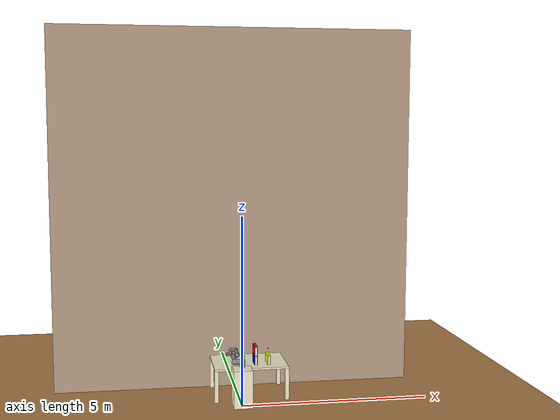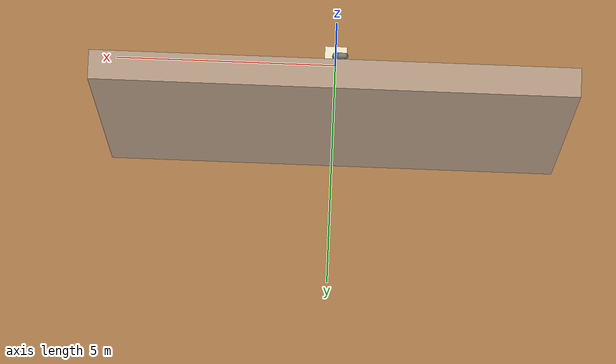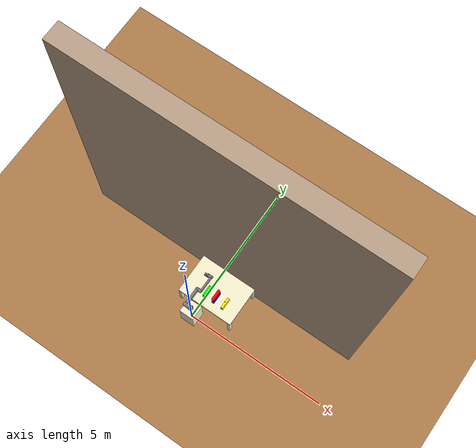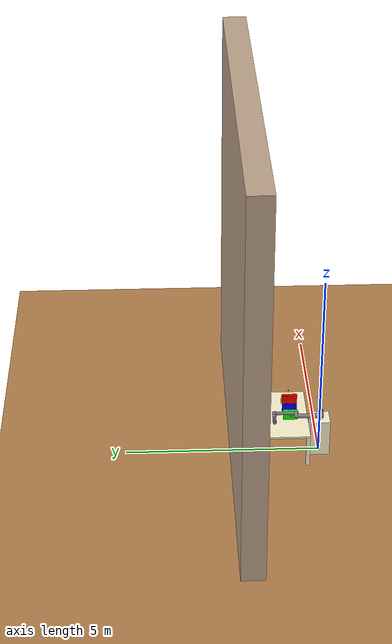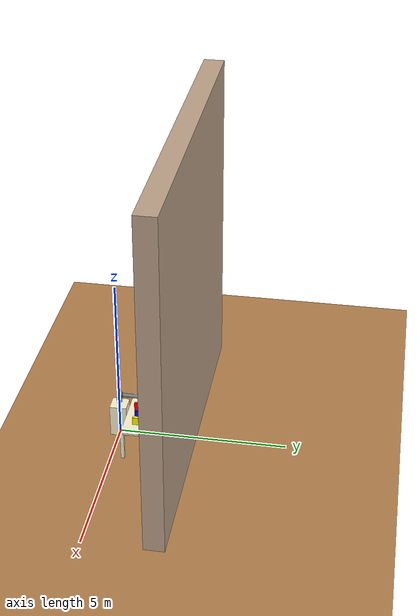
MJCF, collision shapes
<mujoco model="ur10e">
  <compiler angle="radian" meshdir="assets" autolimits="true"/>

  <option integrator="implicitfast"/>

  <default>
    <default class="ur10e">
      <material specular="0.5" shininess="0.25"/>
      <joint axis="0 1 0" range="-6.28319 6.28319" armature="0.1"/>
      <position ctrlrange="-6.2831 6.2831"/>
      <general biastype="affine" ctrlrange="-6.2831 6.2831" gainprm="5000" biasprm="0 -5000 -500"/>
      <default class="size4">
        <joint damping="10"/>
        <general forcerange="-330 330"/>
      </default>
      <default class="size3">
        <joint damping="5"/>
        <general forcerange="-150 150"/>
        <default class="size3_limited">
          <joint range="-3.1415 3.1415"/>
          <general ctrlrange="-3.1415 3.1415"/>
        </default>
      </default>
      <default class="size2">
        <joint damping="2"/>
        <general forcerange="-56 56"/>
      </default>
      <default class="visual">
        <geom type="mesh" contype="0" conaffinity="0" group="2"/>
      </default>
      <default class="collision">
        <geom type="capsule" group="3"/>
        <default class="eef_collision">
          <geom type="cylinder"/>
        </default>
      </default>
      <site size="0.001" rgba="0.5 0.5 0.5 0.3" group="4"/>
    </default>
  </default>

  <asset>
    <material class="ur10e" name="black" rgba="0.033 0.033 0.033 1"/>
    <material class="ur10e" name="jointgray" rgba="0.278 0.278 0.278 1"/>
    <material class="ur10e" name="linkgray" rgba="0.82 0.82 0.82 1"/>
    <material class="ur10e" name="urblue" rgba="0.49 0.678 0.8 1"/>
    <texture name="wood_texture" type="2d" file="assets/wood.png" />
    <material name="wood_material" texture="wood_texture" specular="0.3" shininess="0.1" />
    <texture name="shelf_wood_texture" type="2d" file="assets/shelf_wood.png" />
    <material name="shelf_wood_material" texture="shelf_wood_texture" specular="0.3" shininess="0.1" texrepeat="1 1" texuniform="true" />

    <mesh file="base_0.obj"/>
    <mesh file="base_1.obj"/>
    <mesh file="shoulder_0.obj"/>
    <mesh file="shoulder_1.obj"/>
    <mesh file="shoulder_2.obj"/>
    <mesh file="upperarm_0.obj"/>
    <mesh file="upperarm_1.obj"/>
    <mesh file="upperarm_2.obj"/>
    <mesh file="upperarm_3.obj"/>
    <mesh file="forearm_0.obj"/>
    <mesh file="forearm_1.obj"/>
    <mesh file="forearm_2.obj"/>
    <mesh file="forearm_3.obj"/>
    <mesh file="wrist1_0.obj"/>
    <mesh file="wrist1_1.obj"/>
    <mesh file="wrist1_2.obj"/>
    <mesh file="wrist2_0.obj"/>
    <mesh file="wrist2_1.obj"/>
    <mesh file="wrist2_2.obj"/>
    <mesh file="wrist3.obj"/>

    <texture name="texplane" type="2d" builtin="checker" rgb1=".2 .3 .4" rgb2=".1 0.15 0.2" width="100" height="100" />
    <material name="MatPlane" reflectance="0.5" texture="texplane" texrepeat="1 1" texuniform="true" />
    <material name="red_cover" rgba="1 0 0 1" />
        <!-- White material for the pages -->
    <material name="white_pages" rgba="1 1 1 1" />
  </asset>

  <worldbody>
    <geom name="floor" pos="0 0 0" size="500 500 0.125" type="plane" material='shelf_wood_material' condim="3" group="2"/>
    <light name="spotlight" mode="targetbodycom" target="wrist_2_link" pos="0 -1 2"/>
    <camera pos="4.863 0.258 1.375" xyaxes="0 1 0.000 -0.215 0 1"/>
    <camera name="custom_view" pos="2.327 3.864 4.158" xyaxes="-0.834 0.552 0.000 -0.361 -0.545 0.757"/>
    <camera name="manipulation_view_1" pos="-0.420 -0.913 2.605" xyaxes="0.974 -0.227 -0.000 0.139 0.595 0.791"/>
    <camera name="manipulation_view_2" pos="1.440 -0.462 2.380" xyaxes="0.690 0.723 -0.000 -0.367 0.350 0.862"/>
    <camera name="obstacle_avoidance_view" pos="0.710 -1.344 1.547" xyaxes="0.954 0.299 -0.000 -0.042 0.134 0.990"/>
    <camera name="obstacle_avoidance_view_2" pos="0.520 -1.374 1.635" xyaxes="0.988 0.151 0.000 -0.021 0.139 0.990"/>
    <camera name="view_video_2" pos="-1.026 -0.726 2.226" xyaxes="0.606 -0.795 -0.000 0.359 0.274 0.892"/>
    <camera name="view_video_3" pos="0.484 -1.032 2.815" xyaxes="1.000 0.000 -0.000 -0.000 0.729 0.684"/>
    <camera name="view_video_4" pos="0.910 2.085 2.816" xyaxes="-0.939 0.345 0.000 -0.244 -0.664 0.707"/>

    <body name="new_table" pos="0.3 1.0 0.75">
        <!-- Table top -->
        <geom name="table_top" type="box" size="1 0.7 0.025" pos="0 0 0.13" rgba='0.99 0.96 0.82 1' />

        <!-- Table legs -->
        <body name="table_leg1" pos="0.95 0.65 -0.323">
            <geom name="leg1" type="box" size="0.05 0.05 0.427" rgba='0.99 0.96 0.82 1'  />
        </body>
        <body name="table_leg2" pos="-0.95 0.65 -0.323">
            <geom name="leg2" type="box" size="0.05 0.05 0.427" rgba='0.99 0.96 0.82 1'  />
        </body>
        <body name="table_leg3" pos="0.95 -0.65 -0.323">
            <geom name="leg3" type="box" size="0.05 0.05 0.427" rgba='0.99 0.96 0.82 1'  />
        </body>
        <body name="table_leg4" pos="-0.95 -0.65 -0.323">
            <geom name="leg4" type="box" size="0.05 0.05 0.427" rgba='0.99 0.96 0.82 1'  />
        </body>
    </body>

    <site name="start_point" pos="-0.07 0.75 1.105" size="0.015" rgba="1 0 0 1"/>

    <site name="middle_point_1" pos="-0.03 0.75 1.165" size="0.015" rgba="0 1 0 0"/>
    <site name="middle_point_3" pos="0.05 0.75 1.275" size="0.015" rgba="0 1 0 0"/>
    <site name="middle_point_5" pos="0.15 0.75 1.330" size="0.015" rgba="0 1 0 0"/>
    <site name="middle_point_7" pos="0.25 0.75 1.40" size="0.015" rgba="0 1 0 0"/>
    <site name="middle_point_9" pos="0.35 0.75 1.48" size="0.015" rgba="0 1 0 0"/>
    <site name="middle_point_11" pos="0.47 0.75 1.530" size="0.015" rgba="0 1 0 0"/>
    <site name="middle_point_13" pos="0.60 0.75 1.460" size="0.015" rgba="0 1 0 0"/>
    <site name="middle_point_15" pos="0.74 0.75 1.35" size="0.015" rgba="0 1 0 0"/>

    <site name="goal_point" pos="0.8 0.75 1.305" size="0.015" rgba="1 0 0 1"/>

    <body name="robot_base" pos="0 0 0.5">
        <geom type="box" size="0.25 0.25 0.5" rgba="0.99 0.96 0.82 1"/>
    </body>

    <body name="behind_wall" pos="0 2.02 5.0">
        <geom type="box" size="5.0 0.3 5.0" rgba="0.745 0.64 0.545 1"/>
    </body>

    <body name="book_1" pos="0.10 0.75 1.03">
        <geom type="box" size="0.005 0.187 0.125" pos="0.035 0 0" rgba="0 1 0 1" />
        <geom type="box" size="0.005 0.187 0.125" pos="-0.035 0 0" rgba="0 1 0 1" />
        <geom type="box" size="0.04 0.187 0.005" pos="0 0 0.124" rgba="0 1 0 1" />
        <geom type="box" size="0.03 0.18 0.125" pos="0 0 0" rgba="1 1 1 1" />
    </body>

    <body name="book_2" pos="0.45 0.75 1.025">
        <geom type="box" size="0.005 0.187 0.125" pos="0.035 0 0" rgba="0 0 1 1" />
        <geom type="box" size="0.005 0.187 0.125" pos="-0.035 0 0" rgba="0 0 1 1" />
        <geom type="box" size="0.04 0.187 0.005" pos="0 0 0.124" rgba="0 0 1 1" />
        <geom type="box" size="0.03 0.18 0.125" pos="0 0 0" rgba="1 1 1 1" />
    </body>

    <body name="book_3" pos="0.80 0.75 1.025">
        <geom type="box" size="0.005 0.187 0.125" pos="0.035 0 0" rgba="1 1 0 1" />
        <geom type="box" size="0.005 0.187 0.125" pos="-0.035 0 0" rgba="1 1 0 1" />
        <geom type="box" size="0.04 0.187 0.005" pos="0 0 0.124" rgba="1 1 0 1" />
        <geom type="box" size="0.03 0.18 0.125" pos="0 0 0" rgba="1 1 1 1" />
    </body>

    <body name="book_4" pos="0.45 0.75 1.278">
        <geom type="box" size="0.005 0.187 0.125" pos="0.035 0 0" rgba="1 0 0 1" />
        <geom type="box" size="0.005 0.187 0.125" pos="-0.035 0 0" rgba="1 0 0 1" />
        <geom type="box" size="0.04 0.187 0.005" pos="0 0 0.124" rgba="1 0 0 1" />
        <geom type="box" size="0.03 0.18 0.125" pos="0 0 0" rgba="1 1 1 1" />
    </body>

    <body name="base" pos="0 0 1" quat="1 0 0 1" childclass="ur10e">
      <inertial mass="4.0" pos="0 0 0" diaginertia="0.0061063308908 0.0061063308908 0.01125"/>
      <geom name="base_0" mesh="base_0" material="black" class="visual"/>
      <geom name="base_1" mesh="base_1" material="jointgray" class="visual"/>
      <body name="shoulder_link" pos="0 0 0.181">
        <inertial pos="0 0 0" mass="7.778" diaginertia="0.0314743 0.0314743 0.0218756"/>
        <joint name="shoulder_pan_joint" class="size4" axis="0 0 1"/>
        <geom name="shoulder_0" mesh="shoulder_0" material="urblue" class="visual"/>
        <geom name="shoulder_1" mesh="shoulder_1" material="black" class="visual"/>
        <geom name="shoulder_2" mesh="shoulder_2" material="jointgray" class="visual"/>
        <geom name="shoulder_collision" class="collision" size="0.078 0.06" pos="0 0 -0.04"/>
        <body name="upper_arm_link" pos="0 0.176 0" quat="1 0 1 0">
          <inertial pos="0 0 0.3065" mass="12.93" diaginertia="0.423074 0.423074 0.0363656"/>
          <joint name="shoulder_lift_joint" class="size4"/>
          <geom name="upperarm_0" mesh="upperarm_0" material="black" class="visual"/>
          <geom name="upperarm_1" mesh="upperarm_1" material="jointgray" class="visual"/>
          <geom name="upperarm_2" mesh="upperarm_2" material="urblue" class="visual"/>
          <geom name="upperarm_3" mesh="upperarm_3" material="linkgray" class="visual"/>
          <geom name="upperarm_collision_1" class="collision" pos="0 -0.05 0" quat="1 1 0 0" size="0.078 0.08"/>
          <geom name="upperarm_collision_2" class="collision" size="0.06 0.3" pos="0 0 0.3"/>
          <body name="forearm_link" pos="0 -0.137 0.613">
            <inertial pos="0 0 0.2855" mass="3.87" diaginertia="0.11059 0.11059 0.0108844"/>
            <joint name="elbow_joint" class="size3_limited"/>
            <geom name="forearm_0" mesh="forearm_0" material="urblue" class="visual"/>
            <geom name="forearm_1" mesh="forearm_1" material="black" class="visual"/>
            <geom name="forearm_2" mesh="forearm_2" material="jointgray" class="visual"/>
            <geom name="forearm_3" mesh="forearm_3" material="linkgray" class="visual"/>
            <geom name="forearm_collision_1" class="collision" pos="0 0.08 0" quat="1 1 0 0" size="0.058 0.065"/>
            <geom name="forearm_collision_2" class="collision" size="0.043 0.28" pos="0 0 0.29"/>
            <body name="wrist_1_link" pos="0 0 0.571" quat="1 0 1 0">
              <inertial pos="0 0.135 0" quat="0.5 0.5 -0.5 0.5" mass="1.96"
                diaginertia="0.0055125 0.00510825 0.00510825"/>
              <joint name="wrist_1_joint" class="size2"/>
              <geom name="wrist1_0" mesh="wrist1_0" material="black" class="visual"/>
              <geom name="wrist1_1" mesh="wrist1_1" material="urblue" class="visual"/>
              <geom name="wrist1_2" mesh="wrist1_2" material="jointgray" class="visual"/>
              <geom name="wrist1_collision" class="collision" pos="0 0.06 0" quat="1 1 0 0" size="0.05 0.07"/>
              <body name="wrist_2_link" pos="0 0.135 0">
                <inertial pos="0 0 0.12" quat="0.5 0.5 -0.5 0.5" mass="1.96"
                  diaginertia="0.0055125 0.00510825 0.00510825"/>
                <joint name="wrist_2_joint" axis="0 0 1" class="size2"/>
                <geom name="wrist2_0" mesh="wrist2_0" material="black" class="visual"/>
                <geom name="wrist2_1" mesh="wrist2_1" material="urblue" class="visual"/>
                <geom name="wrist2_2" mesh="wrist2_2" material="jointgray" class="visual"/>
                <geom name="wrist2_collision_1" class="collision" size="0.046 0.065" pos="0 0 0.05"/>
                <geom name="wrist2_collision_2" class="collision" pos="0 0.028 0.12" quat="1 1 0 0" size="0.046 0.043"/>
                <body name="wrist_3_link" pos="0 0 0.12">
                  <inertial pos="0 0.092 0" quat="0 1 -1 0" mass="0.202"
                    diaginertia="0.000204525 0.000144346 0.000144346"/>
                  <joint name="wrist_3_joint" class="size2"/>
                  <geom name="wrist3" material="linkgray" mesh="wrist3" class="visual"/>
                  <geom name="eef_collision" class="eef_collision" pos="0 0.097 0" quat="1 1 0 0" size="0.046 0.02"/>
                  <site name="attachment_site" pos="0 0.1 0" quat="-1 1 0 0"/>
                </body>
              </body>
            </body>
          </body>
        </body>
      </body>
    </body>
  </worldbody>

  <actuator>
    <general class="size4" name="shoulder_pan" joint="shoulder_pan_joint"/>
    <general class="size4" name="shoulder_lift" joint="shoulder_lift_joint"/>
    <general class="size3_limited" name="elbow" joint="elbow_joint"/>
    <general class="size2" name="wrist_1" joint="wrist_1_joint"/>
    <general class="size2" name="wrist_2" joint="wrist_2_joint"/>
    <general class="size2" name="wrist_3" joint="wrist_3_joint"/>
  </actuator>

  <keyframe>
    <key name="home" qpos="-1.5708 -1.5708 1.5708 -1.5708 -1.5708 0" ctrl="-1.5708 -1.5708 1.5708 -1.5708 -1.5708 0"/>
    <key name="Init_pos" qpos="0.01 -0.88 1.73 -0.570 3.14 0" qvel="0 -0.69 1.35 -0.570 3.14 0"/>
    <key name="middle_point_1" qpos="-0.03 -0.942 1.7 -0.570 3.14 0" qvel="0 -0.69 1.35 -0.570 3.14 0"/>
    <key name="middle_point_2" qpos="-0.15 -1.13 1.83 -1.19 3.14 0" qvel="0 -0.69 1.35 -0.570 3.14 0"/>
    <key name="middle_point_3" qpos="-0.27 -1.19 1.79 -1.19 3.14 0" qvel="0 -0.69 1.35 -0.570 3.14 0"/>
    <key name="middle_point_4" qpos="-0.39 -1.22 1.73 -1.19 3.14 0" qvel="0 -0.69 1.35 -0.570 3.14 0"/>
    <key name="middle_point_5" qpos="-0.51 -1.26 1.6 -1.19 3.14 0" qvel="0 -0.69 1.35 -0.570 3.14 0"/>
    <key name="middle_point_6" qpos="-0.63 -1.19 1.45 -1.19 3.14 0" qvel="0 -0.69 1.35 -0.570 3.14 0"/>
    <key name="middle_point_7" qpos="-0.73 -1.01 1.31 -1.19 3.14 0" qvel="0 -0.69 1.35 -0.570 3.14 0"/>
    <key name="middle_point_8" qpos="-0.82 -0.817 1.16 -1.19 3.14 0" qvel="0 -0.69 1.35 -0.570 3.14 0"/>
    <key name="goal_point" qpos="-0.86 -0.628 0.848 -0.628 3.14 0" qvel="0 -0.69 1.35 -0.570 3.14 0"/>
  </keyframe>
</mujoco>
